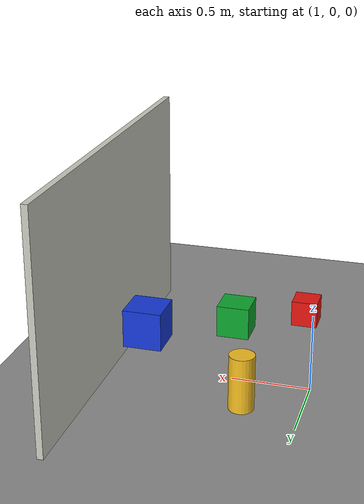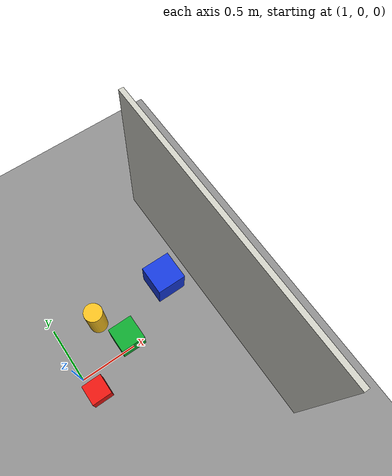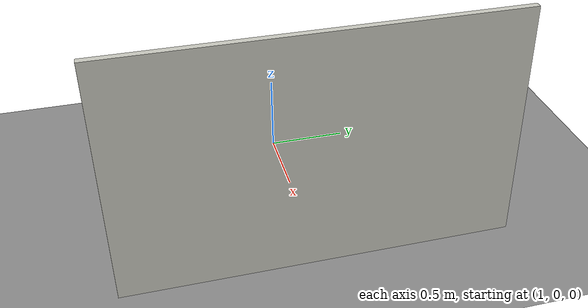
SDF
<?xml version="1.0"?>
<sdf version="1.6">
  <world name="d435i_rgbd_test">
    <include>
      <uri>model://sun</uri>
    </include>

    <physics name="ode_physics" type="ode">
      <max_step_size>0.001</max_step_size>
      <real_time_update_rate>1000</real_time_update_rate>
    </physics>

    <model name="rgbd_ground_plane">
      <static>true</static>
      <link name="link">
        <collision name="collision">
          <geometry>
            <plane>
              <normal>0 0 1</normal>
              <size>6 6</size>
            </plane>
          </geometry>
        </collision>
        <visual name="visual">
          <cast_shadows>false</cast_shadows>
          <geometry>
            <plane>
              <normal>0 0 1</normal>
              <size>6 6</size>
            </plane>
          </geometry>
          <material>
            <ambient>0.55 0.55 0.55 1</ambient>
            <diffuse>0.55 0.55 0.55 1</diffuse>
          </material>
        </visual>
      </link>
    </model>

    <model name="rgbd_back_wall">
      <pose>2.30 0.0 0.75 0 0 0</pose>
      <static>true</static>
      <link name="link">
        <visual name="visual">
          <geometry>
            <box>
              <size>0.04 2.40 1.50</size>
            </box>
          </geometry>
          <material>
            <ambient>0.80 0.80 0.76 1</ambient>
            <diffuse>0.80 0.80 0.76 1</diffuse>
          </material>
        </visual>
      </link>
    </model>

    <model name="rgbd_box_red_060m">
      <pose>1.08 -0.22 0.44 0 0 0</pose>
      <static>true</static>
      <link name="link">
        <visual name="visual">
          <geometry>
            <box>
              <size>0.16 0.16 0.16</size>
            </box>
          </geometry>
          <material>
            <ambient>0.90 0.08 0.06 1</ambient>
            <diffuse>0.90 0.08 0.06 1</diffuse>
          </material>
        </visual>
      </link>
    </model>

    <model name="rgbd_box_green_100m">
      <pose>1.48 0.00 0.44 0 0 0</pose>
      <static>true</static>
      <link name="link">
        <visual name="visual">
          <geometry>
            <box>
              <size>0.20 0.20 0.20</size>
            </box>
          </geometry>
          <material>
            <ambient>0.05 0.65 0.18 1</ambient>
            <diffuse>0.05 0.65 0.18 1</diffuse>
          </material>
        </visual>
      </link>
    </model>

    <model name="rgbd_box_blue_150m">
      <pose>1.98 0.24 0.44 0 0 0</pose>
      <static>true</static>
      <link name="link">
        <visual name="visual">
          <geometry>
            <box>
              <size>0.24 0.24 0.24</size>
            </box>
          </geometry>
          <material>
            <ambient>0.08 0.22 0.85 1</ambient>
            <diffuse>0.08 0.22 0.85 1</diffuse>
          </material>
        </visual>
      </link>
    </model>

    <model name="rgbd_cylinder_yellow">
      <pose>1.36 0.34 0.18 0 0 0</pose>
      <static>true</static>
      <link name="link">
        <visual name="visual">
          <geometry>
            <cylinder>
              <radius>0.08</radius>
              <length>0.36</length>
            </cylinder>
          </geometry>
          <material>
            <ambient>0.95 0.74 0.12 1</ambient>
            <diffuse>0.95 0.74 0.12 1</diffuse>
          </material>
        </visual>
      </link>
    </model>
  </world>
</sdf>
